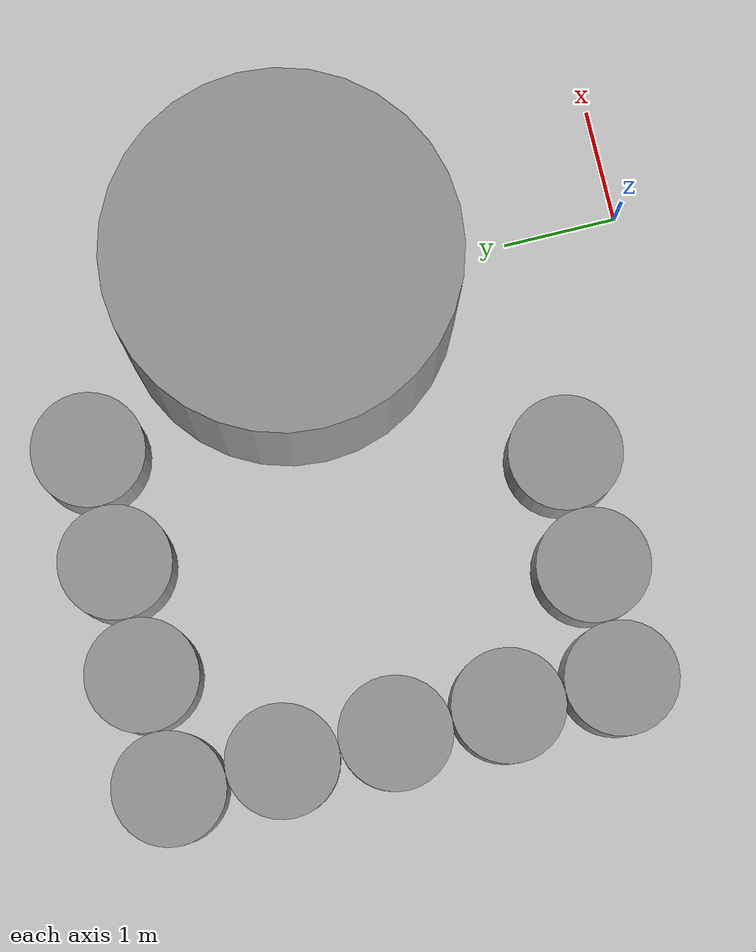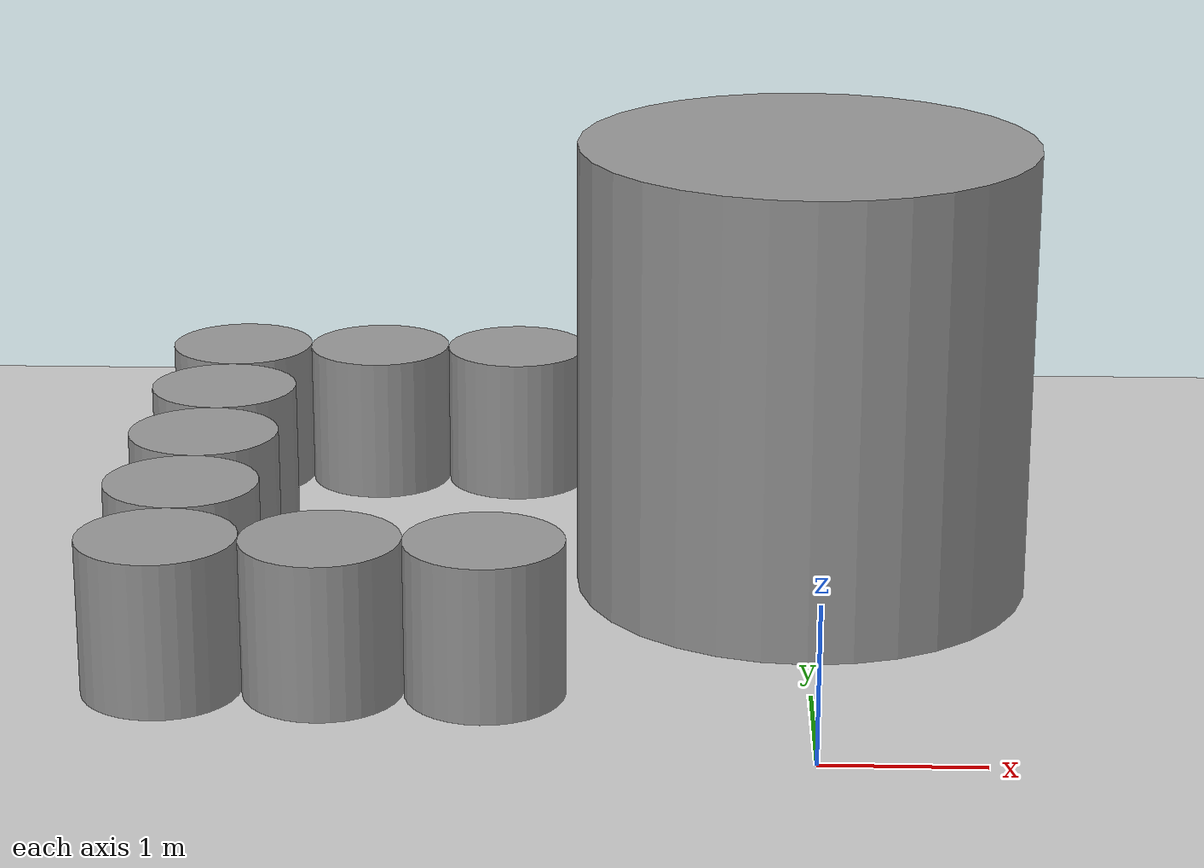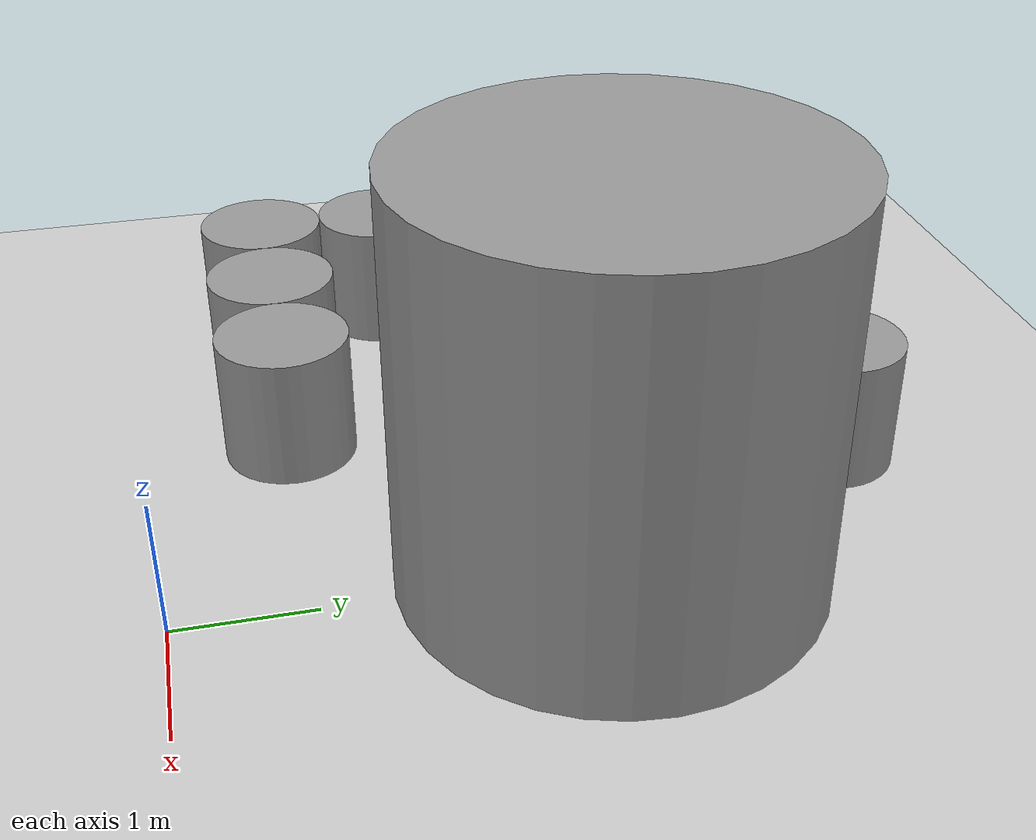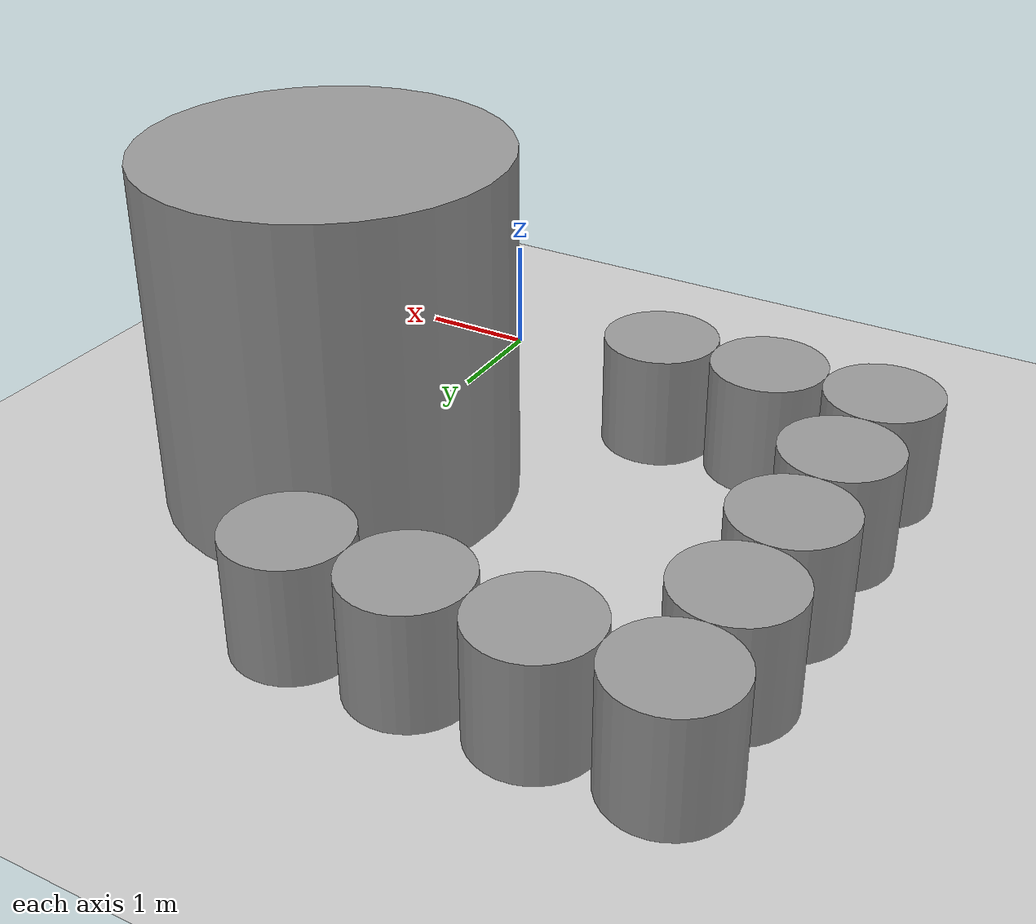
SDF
<sdf version="1.7">
 <world name="default">
  <model name="ground_plane">
   <static>1</static>
   <link name="link">
    <collision name="collision">
     <geometry><plane><normal>0 0 1</normal><size>100 100</size></plane></geometry>
     <surface>
      <contact><collide_bitmask>65535</collide_bitmask></contact>
      <friction><ode><mu>100</mu><mu2>50</mu2></ode></friction>
     </surface>
    </collision>
    <visual name="visual">
     <cast_shadows>0</cast_shadows>
     <geometry><plane><normal>0 0 1</normal><size>100 100</size></plane></geometry>
     <material>
      <script><uri>file://media/materials/scripts/gazebo.material</uri><name>Gazebo/Grey</name></script>
     </material>
    </visual>
   </link>
  </model>
  <model name="cylinder_1m">
   <model name="cylinder_1m">
    <link name="link_0">
     <inertial>
      <mass>1</mass>
      <inertia>
       <ixx>0.166667</ixx>
       <ixy>0</ixy>
       <ixz>0</ixz>
       <iyy>0.166667</iyy>
       <iyz>0</iyz>
       <izz>0.166667</izz>
      </inertia>
     </inertial>
     <pose>0 0 -0 1.5708 -0 0</pose>
     <visual name="visual">
      <geometry>
       <mesh>
        <uri>/home/leesirius/workbench_ws/src/tb3_custom_worlds/custom_models/cylinder_1m.obj</uri>
        <scale>1 1 1</scale>
       </mesh>
      </geometry>
      <material>
       <lighting>1</lighting>
       <script><uri>file://media/materials/scripts/gazebo.material</uri><name>Gazebo/Grey</name></script>
       <shader type="pixel"/>
      </material>
     </visual>
     <collision name="collision">
      <geometry>
       <mesh>
        <uri>/home/leesirius/workbench_ws/src/tb3_custom_worlds/custom_models/cylinder_1m.obj</uri>
        <scale>1 1 1</scale>
       </mesh>
      </geometry>
      <surface>
       <friction>
        <ode><mu>1</mu><mu2>1</mu2><fdir1>0 0 0</fdir1><slip1>0</slip1><slip2>0</slip2></ode>
        <torsional>
         <coefficient>1</coefficient>
         <patch_radius>0</patch_radius>
         <surface_radius>0</surface_radius>
         <use_patch_radius>1</use_patch_radius>
         <ode><slip>0</slip></ode>
        </torsional>
       </friction>
       <bounce><restitution_coefficient>0</restitution_coefficient><threshold>1e+06</threshold></bounce>
       <contact>
        <collide_without_contact>0</collide_without_contact>
        <collide_without_contact_bitmask>1</collide_without_contact_bitmask>
        <collide_bitmask>1</collide_bitmask>
        <ode>
         <soft_cfm>0</soft_cfm>
         <soft_erp>0.2</soft_erp>
         <kp>1e+13</kp>
         <kd>1</kd>
         <max_vel>0.01</max_vel>
         <min_depth>0</min_depth>
        </ode>
        <bullet>
         <split_impulse>1</split_impulse>
         <split_impulse_penetration_threshold>-0.01</split_impulse_penetration_threshold>
         <soft_cfm>0</soft_cfm>
         <soft_erp>0.2</soft_erp>
         <kp>1e+13</kp>
         <kd>1</kd>
        </bullet>
       </contact>
      </surface>
     </collision>
    </link>
    <static>0</static>
    <pose>0 0 4e-06 0 -0 0</pose>
   </model>
   <static>1</static>
   <pose>-3.99997 1.99999 0.499995 -4e-06 -3e-06 0.000187</pose>
  </model>
  <model name="cylinder_1m_0">
   <model name="cylinder_1m">
    <link name="link_0">
     <inertial>
      <mass>1</mass>
      <inertia>
       <ixx>0.166667</ixx>
       <ixy>0</ixy>
       <ixz>0</ixz>
       <iyy>0.166667</iyy>
       <iyz>0</iyz>
       <izz>0.166667</izz>
      </inertia>
     </inertial>
     <pose>0 0 -0 1.5708 -0 0</pose>
     <visual name="visual">
      <geometry>
       <mesh>
        <uri>/home/leesirius/workbench_ws/src/tb3_custom_worlds/custom_models/cylinder_1m.obj</uri>
        <scale>1 1 1</scale>
       </mesh>
      </geometry>
      <material>
       <lighting>1</lighting>
       <script><uri>file://media/materials/scripts/gazebo.material</uri><name>Gazebo/Grey</name></script>
       <shader type="pixel"/>
      </material>
     </visual>
     <collision name="collision">
      <geometry>
       <mesh>
        <uri>/home/leesirius/workbench_ws/src/tb3_custom_worlds/custom_models/cylinder_1m.obj</uri>
        <scale>1 1 1</scale>
       </mesh>
      </geometry>
      <surface>
       <friction>
        <ode><mu>1</mu><mu2>1</mu2><fdir1>0 0 0</fdir1><slip1>0</slip1><slip2>0</slip2></ode>
        <torsional>
         <coefficient>1</coefficient>
         <patch_radius>0</patch_radius>
         <surface_radius>0</surface_radius>
         <use_patch_radius>1</use_patch_radius>
         <ode><slip>0</slip></ode>
        </torsional>
       </friction>
       <bounce><restitution_coefficient>0</restitution_coefficient><threshold>1e+06</threshold></bounce>
       <contact>
        <collide_without_contact>0</collide_without_contact>
        <collide_without_contact_bitmask>1</collide_without_contact_bitmask>
        <collide_bitmask>1</collide_bitmask>
        <ode>
         <soft_cfm>0</soft_cfm>
         <soft_erp>0.2</soft_erp>
         <kp>1e+13</kp>
         <kd>1</kd>
         <max_vel>0.01</max_vel>
         <min_depth>0</min_depth>
        </ode>
        <bullet>
         <split_impulse>1</split_impulse>
         <split_impulse_penetration_threshold>-0.01</split_impulse_penetration_threshold>
         <soft_cfm>0</soft_cfm>
         <soft_erp>0.2</soft_erp>
         <kp>1e+13</kp>
         <kd>1</kd>
        </bullet>
       </contact>
      </surface>
     </collision>
    </link>
    <static>0</static>
    <pose>0 0 4e-06 0 -0 0</pose>
   </model>
   <static>1</static>
   <pose>-3.99995 2.99999 0.499995 -1e-06 -1e-06 0.000144</pose>
  </model>
  <model name="cylinder_1m_1">
   <model name="cylinder_1m">
    <link name="link_0">
     <inertial>
      <mass>1</mass>
      <inertia>
       <ixx>0.166667</ixx>
       <ixy>0</ixy>
       <ixz>0</ixz>
       <iyy>0.166667</iyy>
       <iyz>0</iyz>
       <izz>0.166667</izz>
      </inertia>
     </inertial>
     <pose>0 0 -0 1.5708 -0 0</pose>
     <visual name="visual">
      <geometry>
       <mesh>
        <uri>/home/leesirius/workbench_ws/src/tb3_custom_worlds/custom_models/cylinder_1m.obj</uri>
        <scale>1 1 1</scale>
       </mesh>
      </geometry>
      <material>
       <lighting>1</lighting>
       <script><uri>file://media/materials/scripts/gazebo.material</uri><name>Gazebo/Grey</name></script>
       <shader type="pixel"/>
      </material>
     </visual>
     <collision name="collision">
      <geometry>
       <mesh>
        <uri>/home/leesirius/workbench_ws/src/tb3_custom_worlds/custom_models/cylinder_1m.obj</uri>
        <scale>1 1 1</scale>
       </mesh>
      </geometry>
      <surface>
       <friction>
        <ode><mu>1</mu><mu2>1</mu2><fdir1>0 0 0</fdir1><slip1>0</slip1><slip2>0</slip2></ode>
        <torsional>
         <coefficient>1</coefficient>
         <patch_radius>0</patch_radius>
         <surface_radius>0</surface_radius>
         <use_patch_radius>1</use_patch_radius>
         <ode><slip>0</slip></ode>
        </torsional>
       </friction>
       <bounce><restitution_coefficient>0</restitution_coefficient><threshold>1e+06</threshold></bounce>
       <contact>
        <collide_without_contact>0</collide_without_contact>
        <collide_without_contact_bitmask>1</collide_without_contact_bitmask>
        <collide_bitmask>1</collide_bitmask>
        <ode>
         <soft_cfm>0</soft_cfm>
         <soft_erp>0.2</soft_erp>
         <kp>1e+13</kp>
         <kd>1</kd>
         <max_vel>0.01</max_vel>
         <min_depth>0</min_depth>
        </ode>
        <bullet>
         <split_impulse>1</split_impulse>
         <split_impulse_penetration_threshold>-0.01</split_impulse_penetration_threshold>
         <soft_cfm>0</soft_cfm>
         <soft_erp>0.2</soft_erp>
         <kp>1e+13</kp>
         <kd>1</kd>
        </bullet>
       </contact>
      </surface>
     </collision>
    </link>
    <static>0</static>
    <pose>0 0 4e-06 0 -0 0</pose>
   </model>
   <static>1</static>
   <pose>-3.99995 3.99999 0.499996 -5e-06 -3e-06 0.000141</pose>
  </model>
  <model name="cylinder_1m_2">
   <model name="cylinder_1m">
    <link name="link_0">
     <inertial>
      <mass>1</mass>
      <inertia>
       <ixx>0.166667</ixx>
       <ixy>0</ixy>
       <ixz>0</ixz>
       <iyy>0.166667</iyy>
       <iyz>0</iyz>
       <izz>0.166667</izz>
      </inertia>
     </inertial>
     <pose>0 0 -0 1.5708 -0 0</pose>
     <visual name="visual">
      <geometry>
       <mesh>
        <uri>/home/leesirius/workbench_ws/src/tb3_custom_worlds/custom_models/cylinder_1m.obj</uri>
        <scale>1 1 1</scale>
       </mesh>
      </geometry>
      <material>
       <lighting>1</lighting>
       <script><uri>file://media/materials/scripts/gazebo.material</uri><name>Gazebo/Grey</name></script>
       <shader type="pixel"/>
      </material>
     </visual>
     <collision name="collision">
      <geometry>
       <mesh>
        <uri>/home/leesirius/workbench_ws/src/tb3_custom_worlds/custom_models/cylinder_1m.obj</uri>
        <scale>1 1 1</scale>
       </mesh>
      </geometry>
      <surface>
       <friction>
        <ode><mu>1</mu><mu2>1</mu2><fdir1>0 0 0</fdir1><slip1>0</slip1><slip2>0</slip2></ode>
        <torsional>
         <coefficient>1</coefficient>
         <patch_radius>0</patch_radius>
         <surface_radius>0</surface_radius>
         <use_patch_radius>1</use_patch_radius>
         <ode><slip>0</slip></ode>
        </torsional>
       </friction>
       <bounce><restitution_coefficient>0</restitution_coefficient><threshold>1e+06</threshold></bounce>
       <contact>
        <collide_without_contact>0</collide_without_contact>
        <collide_without_contact_bitmask>1</collide_without_contact_bitmask>
        <collide_bitmask>1</collide_bitmask>
        <ode>
         <soft_cfm>0</soft_cfm>
         <soft_erp>0.2</soft_erp>
         <kp>1e+13</kp>
         <kd>1</kd>
         <max_vel>0.01</max_vel>
         <min_depth>0</min_depth>
        </ode>
        <bullet>
         <split_impulse>1</split_impulse>
         <split_impulse_penetration_threshold>-0.01</split_impulse_penetration_threshold>
         <soft_cfm>0</soft_cfm>
         <soft_erp>0.2</soft_erp>
         <kp>1e+13</kp>
         <kd>1</kd>
        </bullet>
       </contact>
      </surface>
     </collision>
    </link>
    <static>0</static>
    <pose>0 0 4e-06 0 -0 0</pose>
   </model>
   <static>1</static>
   <pose>-3.99995 4.99998 0.499996 -4e-06 -0 0.00014</pose>
  </model>
  <model name="cylinder_1m_2_clone">
   <model name="cylinder_1m">
    <link name="link_0">
     <inertial>
      <mass>1</mass>
      <inertia>
       <ixx>0.166667</ixx>
       <ixy>0</ixy>
       <ixz>0</ixz>
       <iyy>0.166667</iyy>
       <iyz>0</iyz>
       <izz>0.166667</izz>
      </inertia>
     </inertial>
     <pose>0 0 -0 1.5708 -0 0</pose>
     <visual name="visual">
      <geometry>
       <mesh>
        <uri>/home/leesirius/workbench_ws/src/tb3_custom_worlds/custom_models/cylinder_1m.obj</uri>
        <scale>1 1 1</scale>
       </mesh>
      </geometry>
      <material>
       <lighting>1</lighting>
       <script><uri>file://media/materials/scripts/gazebo.material</uri><name>Gazebo/Grey</name></script>
       <shader type="pixel"/>
      </material>
     </visual>
     <collision name="collision">
      <geometry>
       <mesh>
        <uri>/home/leesirius/workbench_ws/src/tb3_custom_worlds/custom_models/cylinder_1m.obj</uri>
        <scale>1 1 1</scale>
       </mesh>
      </geometry>
      <surface>
       <friction>
        <ode><mu>1</mu><mu2>1</mu2><fdir1>0 0 0</fdir1><slip1>0</slip1><slip2>0</slip2></ode>
        <torsional>
         <coefficient>1</coefficient>
         <patch_radius>0</patch_radius>
         <surface_radius>0</surface_radius>
         <use_patch_radius>1</use_patch_radius>
         <ode><slip>0</slip></ode>
        </torsional>
       </friction>
       <bounce><restitution_coefficient>0</restitution_coefficient><threshold>1e+06</threshold></bounce>
       <contact>
        <collide_without_contact>0</collide_without_contact>
        <collide_without_contact_bitmask>1</collide_without_contact_bitmask>
        <collide_bitmask>1</collide_bitmask>
        <ode>
         <soft_cfm>0</soft_cfm>
         <soft_erp>0.2</soft_erp>
         <kp>1e+13</kp>
         <kd>1</kd>
         <max_vel>0.01</max_vel>
         <min_depth>0</min_depth>
        </ode>
        <bullet>
         <split_impulse>1</split_impulse>
         <split_impulse_penetration_threshold>-0.01</split_impulse_penetration_threshold>
         <soft_cfm>0</soft_cfm>
         <soft_erp>0.2</soft_erp>
         <kp>1e+13</kp>
         <kd>1</kd>
        </bullet>
       </contact>
      </surface>
     </collision>
    </link>
    <static>0</static>
    <pose>0 0 4e-06 0 -0 0</pose>
   </model>
   <static>1</static>
   <pose>-2.99996 4.99998 0.499995 -1e-06 -1e-06 0.000171</pose>
  </model>
  <model name="cylinder_1m_2_clone_0">
   <model name="cylinder_1m">
    <link name="link_0">
     <inertial>
      <mass>1</mass>
      <inertia>
       <ixx>0.166667</ixx>
       <ixy>0</ixy>
       <ixz>0</ixz>
       <iyy>0.166667</iyy>
       <iyz>0</iyz>
       <izz>0.166667</izz>
      </inertia>
     </inertial>
     <pose>0 0 -0 1.5708 -0 0</pose>
     <visual name="visual">
      <geometry>
       <mesh>
        <uri>/home/leesirius/workbench_ws/src/tb3_custom_worlds/custom_models/cylinder_1m.obj</uri>
        <scale>1 1 1</scale>
       </mesh>
      </geometry>
      <material>
       <lighting>1</lighting>
       <script><uri>file://media/materials/scripts/gazebo.material</uri><name>Gazebo/Grey</name></script>
       <shader type="pixel"/>
      </material>
     </visual>
     <collision name="collision">
      <geometry>
       <mesh>
        <uri>/home/leesirius/workbench_ws/src/tb3_custom_worlds/custom_models/cylinder_1m.obj</uri>
        <scale>1 1 1</scale>
       </mesh>
      </geometry>
      <surface>
       <friction>
        <ode><mu>1</mu><mu2>1</mu2><fdir1>0 0 0</fdir1><slip1>0</slip1><slip2>0</slip2></ode>
        <torsional>
         <coefficient>1</coefficient>
         <patch_radius>0</patch_radius>
         <surface_radius>0</surface_radius>
         <use_patch_radius>1</use_patch_radius>
         <ode><slip>0</slip></ode>
        </torsional>
       </friction>
       <bounce><restitution_coefficient>0</restitution_coefficient><threshold>1e+06</threshold></bounce>
       <contact>
        <collide_without_contact>0</collide_without_contact>
        <collide_without_contact_bitmask>1</collide_without_contact_bitmask>
        <collide_bitmask>1</collide_bitmask>
        <ode>
         <soft_cfm>0</soft_cfm>
         <soft_erp>0.2</soft_erp>
         <kp>1e+13</kp>
         <kd>1</kd>
         <max_vel>0.01</max_vel>
         <min_depth>0</min_depth>
        </ode>
        <bullet>
         <split_impulse>1</split_impulse>
         <split_impulse_penetration_threshold>-0.01</split_impulse_penetration_threshold>
         <soft_cfm>0</soft_cfm>
         <soft_erp>0.2</soft_erp>
         <kp>1e+13</kp>
         <kd>1</kd>
        </bullet>
       </contact>
      </surface>
     </collision>
    </link>
    <static>0</static>
    <pose>0 0 4e-06 0 -0 0</pose>
   </model>
   <static>1</static>
   <pose>-1.99996 4.99998 0.499995 -1e-06 -1e-06 0.000171</pose>
  </model>
  <model name="cylinder_1m_2_clone_1">
   <model name="cylinder_1m">
    <link name="link_0">
     <inertial>
      <mass>1</mass>
      <inertia>
       <ixx>0.166667</ixx>
       <ixy>0</ixy>
       <ixz>0</ixz>
       <iyy>0.166667</iyy>
       <iyz>0</iyz>
       <izz>0.166667</izz>
      </inertia>
     </inertial>
     <pose>0 0 -0 1.5708 -0 0</pose>
     <visual name="visual">
      <geometry>
       <mesh>
        <uri>/home/leesirius/workbench_ws/src/tb3_custom_worlds/custom_models/cylinder_1m.obj</uri>
        <scale>1 1 1</scale>
       </mesh>
      </geometry>
      <material>
       <lighting>1</lighting>
       <script><uri>file://media/materials/scripts/gazebo.material</uri><name>Gazebo/Grey</name></script>
       <shader type="pixel"/>
      </material>
     </visual>
     <collision name="collision">
      <geometry>
       <mesh>
        <uri>/home/leesirius/workbench_ws/src/tb3_custom_worlds/custom_models/cylinder_1m.obj</uri>
        <scale>1 1 1</scale>
       </mesh>
      </geometry>
      <surface>
       <friction>
        <ode><mu>1</mu><mu2>1</mu2><fdir1>0 0 0</fdir1><slip1>0</slip1><slip2>0</slip2></ode>
        <torsional>
         <coefficient>1</coefficient>
         <patch_radius>0</patch_radius>
         <surface_radius>0</surface_radius>
         <use_patch_radius>1</use_patch_radius>
         <ode><slip>0</slip></ode>
        </torsional>
       </friction>
       <bounce><restitution_coefficient>0</restitution_coefficient><threshold>1e+06</threshold></bounce>
       <contact>
        <collide_without_contact>0</collide_without_contact>
        <collide_without_contact_bitmask>1</collide_without_contact_bitmask>
        <collide_bitmask>1</collide_bitmask>
        <ode>
         <soft_cfm>0</soft_cfm>
         <soft_erp>0.2</soft_erp>
         <kp>1e+13</kp>
         <kd>1</kd>
         <max_vel>0.01</max_vel>
         <min_depth>0</min_depth>
        </ode>
        <bullet>
         <split_impulse>1</split_impulse>
         <split_impulse_penetration_threshold>-0.01</split_impulse_penetration_threshold>
         <soft_cfm>0</soft_cfm>
         <soft_erp>0.2</soft_erp>
         <kp>1e+13</kp>
         <kd>1</kd>
        </bullet>
       </contact>
      </surface>
     </collision>
    </link>
    <static>0</static>
    <pose>0 0 4e-06 0 -0 0</pose>
   </model>
   <static>1</static>
   <pose>-0.999953 4.99998 0.499995 -1e-06 -1e-06 0.000171</pose>
  </model>
  <model name="cylinder_1m_2_clone_46">
   <model name="cylinder_1m">
    <link name="link_0">
     <inertial>
      <mass>1</mass>
      <inertia>
       <ixx>0.166667</ixx>
       <ixy>0</ixy>
       <ixz>0</ixz>
       <iyy>0.166667</iyy>
       <iyz>0</iyz>
       <izz>0.166667</izz>
      </inertia>
     </inertial>
     <pose>0 0 -0 1.5708 -0 0</pose>
     <visual name="visual">
      <geometry>
       <mesh>
        <uri>/home/leesirius/workbench_ws/src/tb3_custom_worlds/custom_models/cylinder_1m.obj</uri>
        <scale>1 1 1</scale>
       </mesh>
      </geometry>
      <material>
       <lighting>1</lighting>
       <script><uri>file://media/materials/scripts/gazebo.material</uri><name>Gazebo/Grey</name></script>
       <shader type="pixel"/>
      </material>
     </visual>
     <collision name="collision">
      <geometry>
       <mesh>
        <uri>/home/leesirius/workbench_ws/src/tb3_custom_worlds/custom_models/cylinder_1m.obj</uri>
        <scale>1 1 1</scale>
       </mesh>
      </geometry>
      <surface>
       <friction>
        <ode><mu>1</mu><mu2>1</mu2><fdir1>0 0 0</fdir1><slip1>0</slip1><slip2>0</slip2></ode>
        <torsional>
         <coefficient>1</coefficient>
         <patch_radius>0</patch_radius>
         <surface_radius>0</surface_radius>
         <use_patch_radius>1</use_patch_radius>
         <ode><slip>0</slip></ode>
        </torsional>
       </friction>
       <bounce><restitution_coefficient>0</restitution_coefficient><threshold>1e+06</threshold></bounce>
       <contact>
        <collide_without_contact>0</collide_without_contact>
        <collide_without_contact_bitmask>1</collide_without_contact_bitmask>
        <collide_bitmask>1</collide_bitmask>
        <ode>
         <soft_cfm>0</soft_cfm>
         <soft_erp>0.2</soft_erp>
         <kp>1e+13</kp>
         <kd>1</kd>
         <max_vel>0.01</max_vel>
         <min_depth>0</min_depth>
        </ode>
        <bullet>
         <split_impulse>1</split_impulse>
         <split_impulse_penetration_threshold>-0.01</split_impulse_penetration_threshold>
         <soft_cfm>0</soft_cfm>
         <soft_erp>0.2</soft_erp>
         <kp>1e+13</kp>
         <kd>1</kd>
        </bullet>
       </contact>
      </surface>
     </collision>
    </link>
    <static>0</static>
    <pose>0 0 4e-06 0 -0 0</pose>
   </model>
   <static>1</static>
   <pose>-3.99997 0.999981 0.499993 -1e-05 3e-06 0.00017</pose>
  </model>
  <model name="cylinder_3m">
   <model name="cylinder_3m">
    <link name="link_2">
     <inertial>
      <mass>1</mass>
      <inertia>
       <ixx>0.166667</ixx>
       <ixy>0</ixy>
       <ixz>0</ixz>
       <iyy>0.166667</iyy>
       <iyz>0</iyz>
       <izz>0.166667</izz>
      </inertia>
     </inertial>
     <pose>0 0 -4e-06 1.5708 -0 3.14159</pose>
     <visual name="visual">
      <geometry>
       <mesh>
        <uri>/home/leesirius/workbench_ws/src/tb3_custom_worlds/custom_models/cylinder_3m.obj</uri>
        <scale>1 1 1</scale>
       </mesh>
      </geometry>
      <material>
       <lighting>1</lighting>
       <script><uri>file://media/materials/scripts/gazebo.material</uri><name>Gazebo/Grey</name></script>
       <shader type="pixel"/>
      </material>
     </visual>
     <collision name="collision">
      <geometry>
       <mesh>
        <uri>/home/leesirius/workbench_ws/src/tb3_custom_worlds/custom_models/cylinder_3m.obj</uri>
        <scale>1 1 1</scale>
       </mesh>
      </geometry>
      <surface>
       <friction>
        <ode><mu>1</mu><mu2>1</mu2><fdir1>0 0 0</fdir1><slip1>0</slip1><slip2>0</slip2></ode>
        <torsional>
         <coefficient>1</coefficient>
         <patch_radius>0</patch_radius>
         <surface_radius>0</surface_radius>
         <use_patch_radius>1</use_patch_radius>
         <ode><slip>0</slip></ode>
        </torsional>
       </friction>
       <bounce><restitution_coefficient>0</restitution_coefficient><threshold>1e+06</threshold></bounce>
       <contact>
        <collide_without_contact>0</collide_without_contact>
        <collide_without_contact_bitmask>1</collide_without_contact_bitmask>
        <collide_bitmask>1</collide_bitmask>
        <ode>
         <soft_cfm>0</soft_cfm>
         <soft_erp>0.2</soft_erp>
         <kp>1e+13</kp>
         <kd>1</kd>
         <max_vel>0.01</max_vel>
         <min_depth>0</min_depth>
        </ode>
        <bullet>
         <split_impulse>1</split_impulse>
         <split_impulse_penetration_threshold>-0.01</split_impulse_penetration_threshold>
         <soft_cfm>0</soft_cfm>
         <soft_erp>0.2</soft_erp>
         <kp>1e+13</kp>
         <kd>1</kd>
        </bullet>
       </contact>
      </surface>
     </collision>
    </link>
    <static>0</static>
    <pose>0 0 0.181896 0 -0 0</pose>
   </model>
   <static>1</static>
   <pose>-0.000262 2.99991 1.31811 2e-06 0 -0.00025</pose>
  </model>
  <model name="cylinder_1m_2_clone_46_clone">
   <model name="cylinder_1m">
    <link name="link_0">
     <inertial>
      <mass>1</mass>
      <inertia>
       <ixx>0.166667</ixx>
       <ixy>0</ixy>
       <ixz>0</ixz>
       <iyy>0.166667</iyy>
       <iyz>0</iyz>
       <izz>0.166667</izz>
      </inertia>
     </inertial>
     <pose>0 0 -0 1.5708 -0 0</pose>
     <visual name="visual">
      <geometry>
       <mesh>
        <uri>/home/leesirius/workbench_ws/src/tb3_custom_worlds/custom_models/cylinder_1m.obj</uri>
        <scale>1 1 1</scale>
       </mesh>
      </geometry>
      <material>
       <lighting>1</lighting>
       <script><uri>file://media/materials/scripts/gazebo.material</uri><name>Gazebo/Grey</name></script>
       <shader type="pixel"/>
      </material>
     </visual>
     <collision name="collision">
      <geometry>
       <mesh>
        <uri>/home/leesirius/workbench_ws/src/tb3_custom_worlds/custom_models/cylinder_1m.obj</uri>
        <scale>1 1 1</scale>
       </mesh>
      </geometry>
      <surface>
       <friction>
        <ode><mu>1</mu><mu2>1</mu2><fdir1>0 0 0</fdir1><slip1>0</slip1><slip2>0</slip2></ode>
        <torsional>
         <coefficient>1</coefficient>
         <patch_radius>0</patch_radius>
         <surface_radius>0</surface_radius>
         <use_patch_radius>1</use_patch_radius>
         <ode><slip>0</slip></ode>
        </torsional>
       </friction>
       <bounce><restitution_coefficient>0</restitution_coefficient><threshold>1e+06</threshold></bounce>
       <contact>
        <collide_without_contact>0</collide_without_contact>
        <collide_without_contact_bitmask>1</collide_without_contact_bitmask>
        <collide_bitmask>1</collide_bitmask>
        <ode>
         <soft_cfm>0</soft_cfm>
         <soft_erp>0.2</soft_erp>
         <kp>1e+13</kp>
         <kd>1</kd>
         <max_vel>0.01</max_vel>
         <min_depth>0</min_depth>
        </ode>
        <bullet>
         <split_impulse>1</split_impulse>
         <split_impulse_penetration_threshold>-0.01</split_impulse_penetration_threshold>
         <soft_cfm>0</soft_cfm>
         <soft_erp>0.2</soft_erp>
         <kp>1e+13</kp>
         <kd>1</kd>
        </bullet>
       </contact>
      </surface>
     </collision>
    </link>
    <static>0</static>
    <pose>0 0 4e-06 0 -0 0</pose>
   </model>
   <static>1</static>
   <pose>-2.99999 0.999994 0.499993 -5e-06 -6e-06 0.0002</pose>
  </model>
  <model name="cylinder_1m_2_clone_46_clone_0">
   <model name="cylinder_1m">
    <link name="link_0">
     <inertial>
      <mass>1</mass>
      <inertia>
       <ixx>0.166667</ixx>
       <ixy>0</ixy>
       <ixz>0</ixz>
       <iyy>0.166667</iyy>
       <iyz>0</iyz>
       <izz>0.166667</izz>
      </inertia>
     </inertial>
     <pose>0 0 -0 1.5708 -0 0</pose>
     <visual name="visual">
      <geometry>
       <mesh>
        <uri>/home/leesirius/workbench_ws/src/tb3_custom_worlds/custom_models/cylinder_1m.obj</uri>
        <scale>1 1 1</scale>
       </mesh>
      </geometry>
      <material>
       <lighting>1</lighting>
       <script><uri>file://media/materials/scripts/gazebo.material</uri><name>Gazebo/Grey</name></script>
       <shader type="pixel"/>
      </material>
     </visual>
     <collision name="collision">
      <geometry>
       <mesh>
        <uri>/home/leesirius/workbench_ws/src/tb3_custom_worlds/custom_models/cylinder_1m.obj</uri>
        <scale>1 1 1</scale>
       </mesh>
      </geometry>
      <surface>
       <friction>
        <ode><mu>1</mu><mu2>1</mu2><fdir1>0 0 0</fdir1><slip1>0</slip1><slip2>0</slip2></ode>
        <torsional>
         <coefficient>1</coefficient>
         <patch_radius>0</patch_radius>
         <surface_radius>0</surface_radius>
         <use_patch_radius>1</use_patch_radius>
         <ode><slip>0</slip></ode>
        </torsional>
       </friction>
       <bounce><restitution_coefficient>0</restitution_coefficient><threshold>1e+06</threshold></bounce>
       <contact>
        <collide_without_contact>0</collide_without_contact>
        <collide_without_contact_bitmask>1</collide_without_contact_bitmask>
        <collide_bitmask>1</collide_bitmask>
        <ode>
         <soft_cfm>0</soft_cfm>
         <soft_erp>0.2</soft_erp>
         <kp>1e+13</kp>
         <kd>1</kd>
         <max_vel>0.01</max_vel>
         <min_depth>0</min_depth>
        </ode>
        <bullet>
         <split_impulse>1</split_impulse>
         <split_impulse_penetration_threshold>-0.01</split_impulse_penetration_threshold>
         <soft_cfm>0</soft_cfm>
         <soft_erp>0.2</soft_erp>
         <kp>1e+13</kp>
         <kd>1</kd>
        </bullet>
       </contact>
      </surface>
     </collision>
    </link>
    <static>0</static>
    <pose>0 0 4e-06 0 -0 0</pose>
   </model>
   <static>1</static>
   <pose>-2.00071 0.99995 0.500028 -6.3e-05 -9.3e-05 0.000185</pose>
  </model>
 </world>
</sdf>
